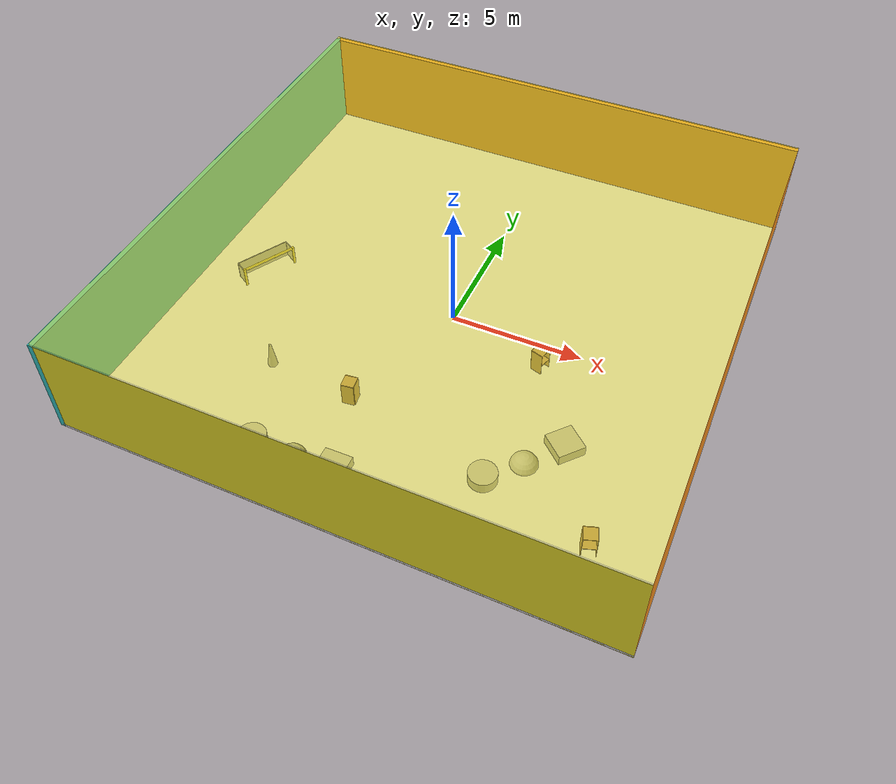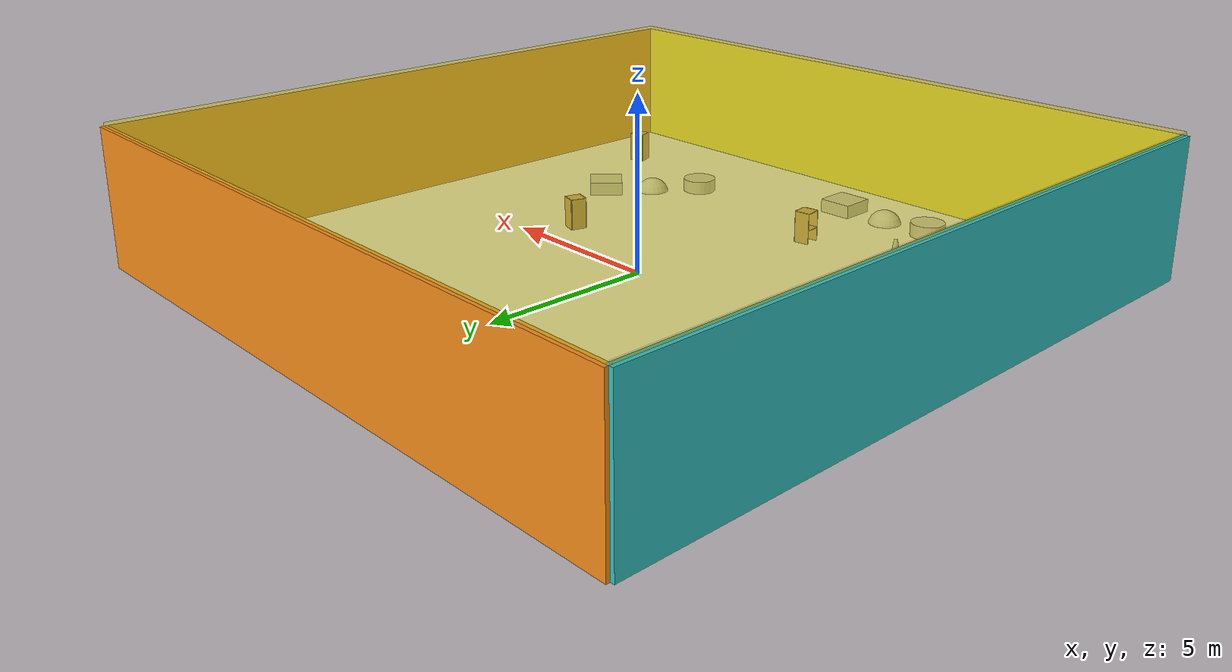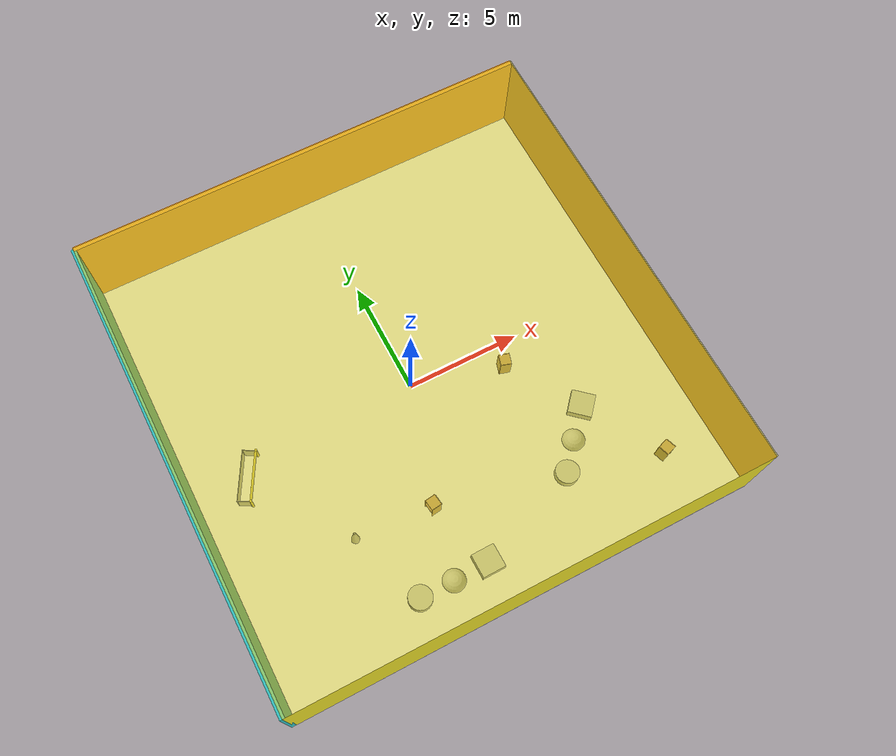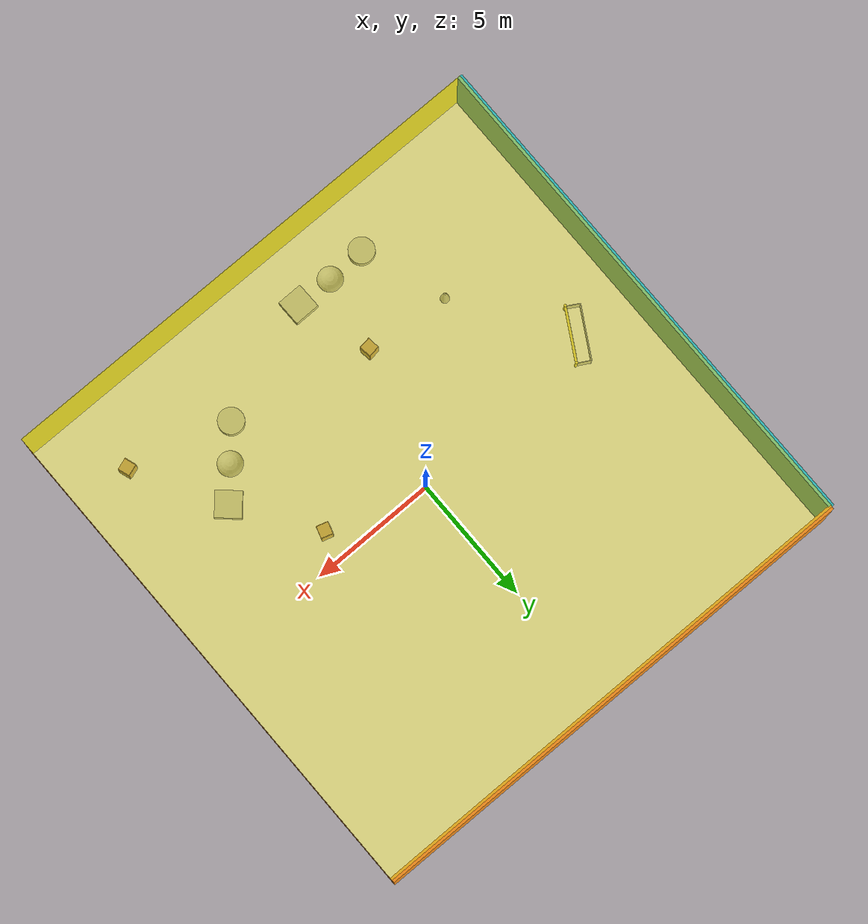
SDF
<sdf version="1.4">
 <world name="default">
  <physics type="ode">
   <max_step_size>0.001</max_step_size>
   <real_time_factor>1</real_time_factor>
   <real_time_update_rate>1000</real_time_update_rate>
   <gravity>0 0 -9.8</gravity>
  </physics>
  <scene><ambient>0.4 0.4 0.4 1</ambient><background>0.7 0.7 0.7 1</background><shadows>1</shadows></scene>
  <model name="Surrounding">
   <static>1</static>
   <link name="Ceiling">
    <collision name="Ceiling_Collision"><geometry><box><size>20 20 0.1</size></box></geometry></collision>
    <visual name="Ceiling_Visual">
     <geometry><box><size>20 20 0.1</size></box></geometry>
     <material>
      <script>
       <uri>file://media/materials/scripts/gazebo.material</uri>
       <name>Gazebo/YellowTransparent</name>
      </script>
     </material>
    </visual>
    <pose>0 0 4.05 0 0 0</pose>
   </link>
   <link name="Wall_South">
    <collision name="Wall_South_Collision">
     <geometry><box><size>20 0 4</size></box></geometry>
     <pose>0 0 2 0 -0 0</pose>
    </collision>
    <visual name="Wall_South_Visual">
     <pose>0 0 2 0 -0 0</pose>
     <geometry><box><size>20 0 4</size></box></geometry>
     <material>
      <script><uri>file://media/materials/scripts/gazebo.material</uri><name>Gazebo/Yellow</name></script>
     </material>
    </visual>
    <velocity_decay><linear>0</linear><angular>0</angular></velocity_decay>
    <pose>0 -10 0 0 -0 0</pose>
   </link>
   <link name="Wall_East">
    <collision name="Wall_21_Collision">
     <geometry><box><size>20 0 4</size></box></geometry>
     <pose>0 0 2 0 -0 0</pose>
    </collision>
    <visual name="Wall_21_Visual">
     <pose>0 0 2 0 -0 0</pose>
     <geometry><box><size>20 0 4</size></box></geometry>
     <material>
      <script><uri>file://media/materials/scripts/gazebo.material</uri><name>Gazebo/Orange</name></script>
     </material>
    </visual>
    <velocity_decay><linear>0</linear><angular>0</angular></velocity_decay>
    <pose>10 0 0 0 -0 1.5708</pose>
   </link>
   <link name="Wall_North">
    <collision name="Wall_22_Collision">
     <geometry><box><size>20 0.2 4</size></box></geometry>
     <pose>0 0 2 0 -0 0</pose>
    </collision>
    <visual name="Wall_22_Visual">
     <pose>0 0 2 0 -0 0</pose>
     <geometry><box><size>20 0.2 4</size></box></geometry>
     <material>
      <script><uri>file://media/materials/scripts/gazebo.material</uri><name>Gazebo/Orange</name></script>
     </material>
    </visual>
    <velocity_decay><linear>0</linear><angular>0</angular></velocity_decay>
    <pose>0 10 0 0 -0 0</pose>
   </link>
   <link name="Wall_West">
    <collision name="Wall_23_Collision">
     <geometry><box><size>20 0.2 4</size></box></geometry>
     <pose>0 0 2 0 -0 0</pose>
    </collision>
    <visual name="Wall_23_Visual">
     <pose>0 0 2 0 -0 0</pose>
     <geometry><box><size>20 0.2 4</size></box></geometry>
     <material>
      <script><uri>file://media/materials/scripts/gazebo.material</uri><name>Gazebo/Turquoise</name></script>
     </material>
    </visual>
    <velocity_decay><linear>0</linear><angular>0</angular></velocity_decay>
    <pose>-10 0 0 0 0 -1.5708</pose>
   </link>
   <link name="Ground_link">
    <collision name="collision">
     <pose>0 0 .05 0 -0 0</pose>
     <geometry><box><size>20 20 0.1</size></box></geometry>
    </collision>
    <visual name="visual">
     <pose>0 0 .05 0 -0 0</pose>
     <geometry><box><size>20 20 0.1</size></box></geometry>
     <material>
      <script><uri>file://media/materials/scripts/gazebo.material</uri><name>Gazebo/WhiteGlow</name></script>
     </material>
    </visual>
   </link>
   <static>1</static>
  </model>
  <spherical_coordinates>
   <surface_model>EARTH_WGS84</surface_model>
   <latitude_deg>0</latitude_deg>
   <longitude_deg>0</longitude_deg>
   <elevation>0</elevation>
   <heading_deg>0</heading_deg>
  </spherical_coordinates>
  <light name="lightball_0" type="diffuse">
   <diffuse>0.8 0.8 0.8 1</diffuse>
   <specular>0.2 0.2 0.2 1</specular>
   <attenuation>
    <range>100</range>
    <constant>0.7</constant>
    <linear>0.01</linear>
    <quadratic>0.001</quadratic>
   </attenuation>
   <direction>-0.5 0.1 -0.9</direction>
   <pose>7.78983993265 0.653501795279 1.7564288325 0 0 0</pose>
  </light>
  <light name="lightball_1" type="diffuse">
   <diffuse>0.8 0.8 0.8 1</diffuse>
   <specular>0.2 0.2 0.2 1</specular>
   <attenuation>
    <range>100</range>
    <constant>0.7</constant>
    <linear>0.01</linear>
    <quadratic>0.001</quadratic>
   </attenuation>
   <direction>-0.5 0.1 -0.9</direction>
   <pose>0.586287578766 -6.75155499655 1.52049472738 0 0 0</pose>
  </light>
  <light name="lightball_2" type="diffuse">
   <diffuse>0.8 0.8 0.8 1</diffuse>
   <specular>0.2 0.2 0.2 1</specular>
   <attenuation>
    <range>100</range>
    <constant>0.7</constant>
    <linear>0.01</linear>
    <quadratic>0.001</quadratic>
   </attenuation>
   <direction>-0.5 0.1 -0.9</direction>
   <pose>-1.96115038962 7.78515764178 1.82894983157 0 0 0</pose>
  </light>
  <light name="lightball_3" type="diffuse">
   <diffuse>0.8 0.8 0.8 1</diffuse>
   <specular>0.2 0.2 0.2 1</specular>
   <attenuation>
    <range>100</range>
    <constant>0.7</constant>
    <linear>0.01</linear>
    <quadratic>0.001</quadratic>
   </attenuation>
   <direction>-0.5 0.1 -0.9</direction>
   <pose>-3.44957718895 -1.45451555999 1.46931080092 0 0 0</pose>
  </light>
  <light name="lightball_4" type="diffuse">
   <diffuse>0.8 0.8 0.8 1</diffuse>
   <specular>0.2 0.2 0.2 1</specular>
   <attenuation>
    <range>100</range>
    <constant>0.7</constant>
    <linear>0.01</linear>
    <quadratic>0.001</quadratic>
   </attenuation>
   <direction>-0.5 0.1 -0.9</direction>
   <pose>-9.17982058013 1.48114849333 0.760886168784 0 0 0</pose>
  </light>
  <light name="lightball_5" type="diffuse">
   <diffuse>0.8 0.8 0.8 1</diffuse>
   <specular>0.2 0.2 0.2 1</specular>
   <attenuation>
    <range>100</range>
    <constant>0.7</constant>
    <linear>0.01</linear>
    <quadratic>0.001</quadratic>
   </attenuation>
   <direction>-0.5 0.1 -0.9</direction>
   <pose>2.60212964605 8.44716270806 3.5712120178 0 0 0</pose>
  </light>
  <light name="lightball_6" type="diffuse">
   <diffuse>0.8 0.8 0.8 1</diffuse>
   <specular>0.2 0.2 0.2 1</specular>
   <attenuation>
    <range>100</range>
    <constant>0.7</constant>
    <linear>0.01</linear>
    <quadratic>0.001</quadratic>
   </attenuation>
   <direction>-0.5 0.1 -0.9</direction>
   <pose>6.34609249269 -6.56492299262 1.86343790901 0 0 0</pose>
  </light>
  <light name="lightball_7" type="diffuse">
   <diffuse>0.8 0.8 0.8 1</diffuse>
   <specular>0.2 0.2 0.2 1</specular>
   <attenuation>
    <range>100</range>
    <constant>0.7</constant>
    <linear>0.01</linear>
    <quadratic>0.001</quadratic>
   </attenuation>
   <direction>-0.5 0.1 -0.9</direction>
   <pose>-8.86504784191 5.45470664422 3.09338301379 0 0 0</pose>
  </light>
  <light name="lightball_8" type="diffuse">
   <diffuse>0.8 0.8 0.8 1</diffuse>
   <specular>0.2 0.2 0.2 1</specular>
   <attenuation>
    <range>100</range>
    <constant>0.7</constant>
    <linear>0.01</linear>
    <quadratic>0.001</quadratic>
   </attenuation>
   <direction>-0.5 0.1 -0.9</direction>
   <pose>-6.12629852539 -9.41934081836 0.748999908269 0 0 0</pose>
  </light>
  <light name="lightball_9" type="diffuse">
   <diffuse>0.8 0.8 0.8 1</diffuse>
   <specular>0.2 0.2 0.2 1</specular>
   <attenuation>
    <range>100</range>
    <constant>0.7</constant>
    <linear>0.01</linear>
    <quadratic>0.001</quadratic>
   </attenuation>
   <direction>-0.5 0.1 -0.9</direction>
   <pose>4.24311771807 -1.112463928 0.620332868201 0 0 0</pose>
  </light>
  <include>
   <uri>model://robocup_3Dsim_goal</uri>
   <pose>-7.43492326542 -0.792297645312 0 0 0 2.62707619818</pose>
  </include>
  <include>
   <uri>model://construction_cone</uri>
   <pose>-4.91937210297 -4.7871523731 0 0 0 1.17169195582</pose>
  </include>
  <include>
   <uri>model://textured_shapes</uri>
   <pose>-2.224310757 -7.99578532575 0 0 0 1.58495467074</pose>
  </include>
  <include><uri>model://cabinet</uri><pose>-1.62109866259 -5.06994295673 0 0 0 0.130385102755</pose></include>
  <include>
   <uri>model://textured_shapes</uri>
   <pose>4.82478419775 -5.17362551006 0 0 0 2.41450834921</pose>
  </include>
  <include><uri>model://cabinet</uri><pose>3.83117797516 -1.06889206009 0 0 0 2.84886600277</pose></include>
  <include><uri>model://cabinet</uri><pose>7.74457808571 -7.33877986016 0 0 0 1.89920160563</pose></include>
 </world>
</sdf>

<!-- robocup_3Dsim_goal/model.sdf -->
<sdf version="1.5">
  <model name="robocup_3d_goal">
    <static>true</static>
    <link name="left_post">
      <pose>0 1.05 0.45 0 0 0</pose>
      <collision name="collision">
        <geometry>
          <cylinder>
            <radius>0.05</radius>
            <length>0.9</length>
          </cylinder>
        </geometry>
      </collision>
      <visual name="visual">
        <geometry>
          <cylinder>
            <radius>0.05</radius>
            <length>0.9</length>
          </cylinder>
        </geometry>
        <material>
          <script>
            <uri>file://media/materials/scripts/gazebo.material</uri>
            <name>Gazebo/ZincYellow</name>
          </script>
        </material>
      </visual>
    </link>
    <link name="left_support_horiz_lower">
      <pose>0.30 1.05 0.01 0 0 0</pose>
      <collision name="collision">
        <geometry>
          <box>
            <size>0.50 0.02 0.02</size>
          </box>
        </geometry>
      </collision>
      <visual name="visual">
        <geometry>
          <box>
            <size>0.50 0.02 0.02</size>
          </box>
        </geometry>
        <material>
          <script>
            <uri>file://media/materials/scripts/gazebo.material</uri>
            <name>Gazebo/White</name>
          </script>
        </material>
      </visual>
    </link>
    <link name="left_support_horiz_upper">
      <pose>0.30 1.05 0.79 0 0 0</pose>
      <collision name="collision">
        <geometry>
          <box>
            <size>0.50 0.02 0.02</size>
          </box>
        </geometry>
      </collision>
      <visual name="visual">
        <geometry>
          <box>
            <size>0.50 0.02 0.02</size>
          </box>
        </geometry>
        <material>
          <script>
            <uri>file://media/materials/scripts/gazebo.material</uri>
            <name>Gazebo/White</name>
          </script>
        </material>
      </visual>
    </link>
    <link name="left_support_vertical">
      <pose>0.56 1.05 0.4 0 1.5708 0</pose>
      <collision name="collision">
        <geometry>
          <box>
            <size>0.80 0.02 0.02</size>
          </box>
        </geometry>
      </collision>
      <visual name="visual">
        <geometry>
          <box>
            <size>0.80 0.02 0.02</size>
          </box>
        </geometry>
        <material>
          <script>
            <uri>file://media/materials/scripts/gazebo.material</uri>
            <name>Gazebo/White</name>
          </script>
        </material>
      </visual>
    </link>
    <link name="right_support_horiz_lower">
      <pose>0.30 -1.05 0.01 0 0 0</pose>
      <collision name="collision">
        <geometry>
          <box>
            <size>0.50 0.02 0.02</size>
          </box>
        </geometry>
      </collision>
      <visual name="visual">
        <geometry>
          <box>
            <size>0.50 0.02 0.02</size>
          </box>
        </geometry>
        <material>
          <script>
            <uri>file://media/materials/scripts/gazebo.material</uri>
            <name>Gazebo/White</name>
          </script>
        </material>
      </visual>
    </link>
    <link name="right_support_horiz_upper">
      <pose>0.30 -1.05 0.79 0 0 0</pose>
      <collision name="collision">
        <geometry>
          <box>
            <size>0.50 0.02 0.02</size>
          </box>
        </geometry>
      </collision>
      <visual name="visual">
        <geometry>
          <box>
            <size>0.50 0.02 0.02</size>
          </box>
        </geometry>
        <material>
          <script>
            <uri>file://media/materials/scripts/gazebo.material</uri>
            <name>Gazebo/White</name>
          </script>
        </material>
      </visual>
    </link>
    <link name="right_support_vertical">
      <pose>0.56 -1.05 0.4 0 1.5708 0</pose>
      <collision name="collision">
        <geometry>
          <box>
            <size>0.80 0.02 0.02</size>
          </box>
        </geometry>
      </collision>
      <visual name="visual">
        <geometry>
          <box>
            <size>0.80 0.02 0.02</size>
          </box>
        </geometry>
        <material>
          <script>
            <uri>file://media/materials/scripts/gazebo.material</uri>
            <name>Gazebo/White</name>
          </script>
        </material>
      </visual>
    </link>
    <link name="center_support_horiz_lower">
      <pose>0.56 0 0.01 0 1.5708 0</pose>
      <collision name="collision">
        <geometry>
          <box>
            <size>0.02 2.08 0.02</size>
          </box>
        </geometry>
      </collision>
      <visual name="visual">
        <geometry>
          <box>
            <size>0.02 2.08 0.02</size>
          </box>
        </geometry>
        <material>
          <script>
            <uri>file://media/materials/scripts/gazebo.material</uri>
            <name>Gazebo/White</name>
          </script>
        </material>
      </visual>
    </link>
    <link name="center_support_horiz_upper">
      <pose>0.56 0 0.79 0 1.5708 0</pose>
      <collision name="collision">
        <geometry>
          <box>
            <size>0.02 2.08 0.02</size>
          </box>
        </geometry>
      </collision>
      <visual name="visual">
        <geometry>
          <box>
            <size>0.02 2.08 0.02</size>
          </box>
        </geometry>
        <material>
          <script>
            <uri>file://media/materials/scripts/gazebo.material</uri>
            <name>Gazebo/White</name>
          </script>
        </material>
      </visual>
    </link>
    <link name="right_post">
      <pose>0 -1.05 0.45 0 0 0</pose>
      <collision name="collision">
        <geometry>
          <cylinder>
            <radius>0.05</radius>
            <length>0.9</length>
          </cylinder>
        </geometry>
      </collision>
      <visual name="visual">
        <geometry>
          <cylinder>
            <radius>0.05</radius>
            <length>0.9</length>
          </cylinder>
        </geometry>
        <material>
          <script>
            <uri>file://media/materials/scripts/gazebo.material</uri>
            <name>Gazebo/ZincYellow</name>
          </script>
        </material>
      </visual>
    </link>
    <link name="crossbar">
      <pose>0 0 0.85 1.57 1.57 0</pose>
      <collision name="collision">
        <geometry>
          <cylinder>
            <radius>0.05</radius>
            <length>2.0</length>
          </cylinder>
        </geometry>
      </collision>
      <visual name="visual">
        <geometry>
          <cylinder>
            <radius>0.05</radius>
            <length>2.0</length>
          </cylinder>
        </geometry>
        <material>
          <script>
            <uri>file://media/materials/scripts/gazebo.material</uri>
            <name>Gazebo/ZincYellow</name>
          </script>
        </material>
      </visual>
    </link>
    <link name="center_net">
      <pose>0.56 0 0.40 0 0 0</pose>
      <collision name="collision">
        <geometry>
          <box>
            <size>0.01 2.1 0.80</size>
          </box>
        </geometry>
      </collision>
      <visual name="visual">
        <geometry>
          <box>
            <size>0.01 2.1 0.80</size>
          </box>
        </geometry>
        <material>
          <script>
            <uri>model://../model_source/models/robocup09_spl_field/materials/scripts/</uri>
            <uri>model://../model_source/models/robocup09_spl_field/materials/textures/</uri>
            <name>RoboCup/Net</name>
          </script>
        </material>
      </visual>
    </link>
    <link name="left_net">
      <pose>0.30 1.05 0.40 0 0 0</pose>
      <collision name="collision">
        <geometry>
          <box>
            <size>0.50 0.01 0.76</size>
          </box>
        </geometry>
      </collision>
      <visual name="visual">
        <geometry>
          <box>
            <size>0.50 0.01 0.76</size>
          </box>
        </geometry>
        <material>
          <script>
            <uri>model://../model_source/models/robocup09_spl_field/materials/scripts/</uri>
            <uri>model://../model_source/models/robocup09_spl_field/materials/textures/</uri>
            <name>RoboCup/Net</name>
          </script>
        </material>
      </visual>
    </link>
    <link name="right_net">
      <pose>0.30 -1.05 0.40 0 0 0</pose>
      <collision name="collision">
        <geometry>
          <box>
            <size>0.50 0.01 0.76</size>
          </box>
        </geometry>
      </collision>
      <visual name="visual">
        <geometry>
          <box>
            <size>0.50 0.01 0.76</size>
          </box>
        </geometry>
        <material>
          <script>
            <uri>model://../model_source/models/robocup09_spl_field/materials/scripts/</uri>
            <uri>model://../model_source/models/robocup09_spl_field/materials/textures/</uri>
            <name>RoboCup/Net</name>
          </script>
        </material>
      </visual>
    </link>
  </model>
</sdf>

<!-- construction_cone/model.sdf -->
<sdf version="1.5">
  <model name="Construction Cone">
    <link name="link">
      <collision name="collision">
        <geometry>
          <mesh>
            <scale>10 10 10</scale>
            <uri>file://isr-testbed/construction_cone/meshes/construction_cone.dae</uri>
          </mesh>
        </geometry>
      </collision>
      <visual name="visual">
        <geometry>
          <mesh>
            <scale>10 10 10</scale>
            <uri>file://isr-testbed/construction_cone/meshes/construction_cone.dae</uri>
          </mesh>
        </geometry>
      </visual>
    </link>
  </model>
</sdf>

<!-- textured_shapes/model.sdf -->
<sdf version="1.6">
  <model name="textured_shapes">
    <pose>0 0 0.5 0 0 0</pose>
    <link name="box">
      <pose>0 -1.5 0 0 0 0</pose>
      <collision name="collision">
        <geometry>
          <box>
            <size>1 1 1</size>
          </box>
        </geometry>
      </collision>
      <visual name="visual">
        <geometry>
          <box>
            <size>1 1 1</size>
          </box>
        </geometry>
        <material>
          <script>
            <uri>model://../model_source/models/textured_shapes/materials/scripts</uri>
            <uri>model://../model_source/models/textured_shapes/materials/textures</uri>
            <name>TexturedShape/Squares</name>
          </script>
        </material>
      </visual>
    </link>
    <link name="sphere">
      <collision name="collision">
        <geometry>
          <sphere>
            <radius>0.5</radius>
          </sphere>
        </geometry>
      </collision>
      <visual name="visual">
        <geometry>
          <sphere>
            <radius>0.5</radius>
          </sphere>
        </geometry>
        <material>
          <script>
            <uri>model://../model_source/models/textured_shapes/materials/scripts</uri>
            <uri>model://../model_source/models/textured_shapes/materials/textures</uri>
            <name>TexturedShape/Squares</name>
          </script>
        </material>
      </visual>
    </link>
    <link name="cylinder">
      <pose>0 1.5 0 0 0 0</pose>
      <collision name="collision">
        <geometry>
          <cylinder>
            <radius>0.5</radius>
            <length>1</length>
          </cylinder>
        </geometry>
      </collision>
      <visual name="visual">
        <geometry>
          <cylinder>
            <radius>0.5</radius>
            <length>1</length>
          </cylinder>
        </geometry>
        <material>
          <script>
            <uri>model://../model_source/models/textured_shapes/materials/scripts</uri>
            <uri>model://../model_source/models/textured_shapes/materials/textures</uri>
            <name>TexturedShape/Squares</name>
          </script>
        </material>
      </visual>
    </link>
  </model>
</sdf>

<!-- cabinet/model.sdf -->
<sdf version="1.5">
  <model name="cabinet">
    <static>true</static>
    <link name="cabinet_bottom_plate">
      <inertial>
        <pose>0 0 -1 0 0 0</pose>
        <inertia>
          <ixx>2.050000</ixx>
          <ixy>0</ixy>
          <ixz>0</ixz>
          <iyy>2.050000</iyy>
          <iyz>0</iyz>
          <izz>2.050000</izz>
        </inertia>
        <mass>25.000000</mass>
      </inertial>
      <collision name="cabinet_bottom_plate_geom">
        <pose>0 0 0.010000 0 0 0</pose>
        <geometry>
          <box>
            <size>0.450000 0.450000 0.020000</size>
          </box>
        </geometry>
      </collision>
      <visual name="cabinet_bottom_plate_geom_visual">
        <pose>0 0 0.010000 0 0 0</pose>
        <geometry>
          <box>
            <size>0.450000 0.450000 0.020000</size>
          </box>
        </geometry>
        <material>
          <script>
            <uri>model://media/materials/scripts/gazebo.material</uri>
            <name>Gazebo/Wood</name>
          </script>
        </material>
      </visual>
      <collision name="cabinet_bottom_plate_geom_cabinet_back_plate">
        <pose>0.235000 0 0.510000 0 0 0</pose>
        <geometry>
          <box>
            <size>0.020000 0.450000 1.020000</size>
          </box>
        </geometry>
      </collision>
      <visual name="cabinet_bottom_plate_geom_cabinet_back_plate_visual">
        <pose>0.235000 0 0.510000 0 0 0</pose>
        <geometry>
          <box>
            <size>0.020000 0.450000 1.020000</size>
          </box>
        </geometry>
        <material>
          <script>
            <uri>model://media/materials/scripts/gazebo.material</uri>
            <name>Gazebo/Wood</name>
          </script>
        </material>
      </visual>
      <collision name="cabinet_bottom_plate_geom_cabinet_left_plate">
        <pose>0 0.235000 0.510000 0 0 0</pose>
        <geometry>
          <box>
            <size>0.450000 0.020000 1.020000</size>
          </box>
        </geometry>
      </collision>
      <visual name="cabinet_bottom_plate_geom_cabinet_left_plate_visual">
        <pose>0 0.235000 0.510000 0 0 0</pose>
        <geometry>
          <box>
            <size>0.450000 0.020000 1.020000</size>
          </box>
        </geometry>
        <material>
          <script>
            <uri>model://media/materials/scripts/gazebo.material</uri>
            <name>Gazebo/Wood</name>
          </script>
        </material>
      </visual>
      <collision name="cabinet_bottom_plate_geom_cabinet_middle_plate">
        <pose>0 0 0.510000 0 0 0</pose>
        <geometry>
          <box>
            <size>0.450000 0.450000 0.020000</size>
          </box>
        </geometry>
      </collision>
      <visual name="cabinet_bottom_plate_geom_cabinet_middle_plate_visual">
        <pose>0 0 0.510000 0 0 0</pose>
        <geometry>
          <box>
            <size>0.450000 0.450000 0.020000</size>
          </box>
        </geometry>
        <material>
          <script>
            <uri>model://media/materials/scripts/gazebo.material</uri>
            <name>Gazebo/Wood</name>
          </script>
        </material>
      </visual>
      <collision name="cabinet_bottom_plate_geom_cabinet_right_plate">
        <pose>0 -0.235000 0.510000 0 0 0</pose>
        <geometry>
          <box>
            <size>0.450000 0.020000 1.020000</size>
          </box>
        </geometry>
      </collision>
      <visual name="cabinet_bottom_plate_geom_cabinet_right_plate_visual">
        <pose>0 -0.235000 0.510000 0 0 0</pose>
        <geometry>
          <box>
            <size>0.450000 0.020000 1.020000</size>
          </box>
        </geometry>
        <material>
          <script>
            <uri>model://media/materials/scripts/gazebo.material</uri>
            <name>Gazebo/Wood</name>
          </script>
        </material>
      </visual>
      <collision name="cabinet_bottom_plate_geom_cabinet_top_plate">
        <pose>0 0 1.010000 0 0 0</pose>
        <geometry>
          <box>
            <size>0.450000 0.450000 0.020000</size>
          </box>
        </geometry>
      </collision>
      <visual name="cabinet_bottom_plate_geom_cabinet_top_plate_visual">
        <pose>0 0 1.010000 0 0 0</pose>
        <geometry>
          <box>
            <size>0.450000 0.450000 0.020000</size>
          </box>
        </geometry>
        <material>
          <script>
            <uri>model://media/materials/scripts/gazebo.material</uri>
            <name>Gazebo/Wood</name>
          </script>
        </material>
      </visual>
    </link>
  </model>
</sdf>
